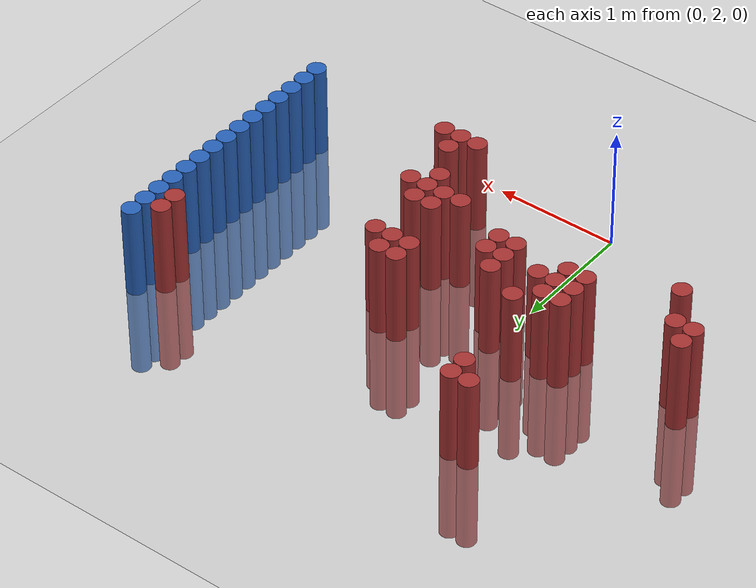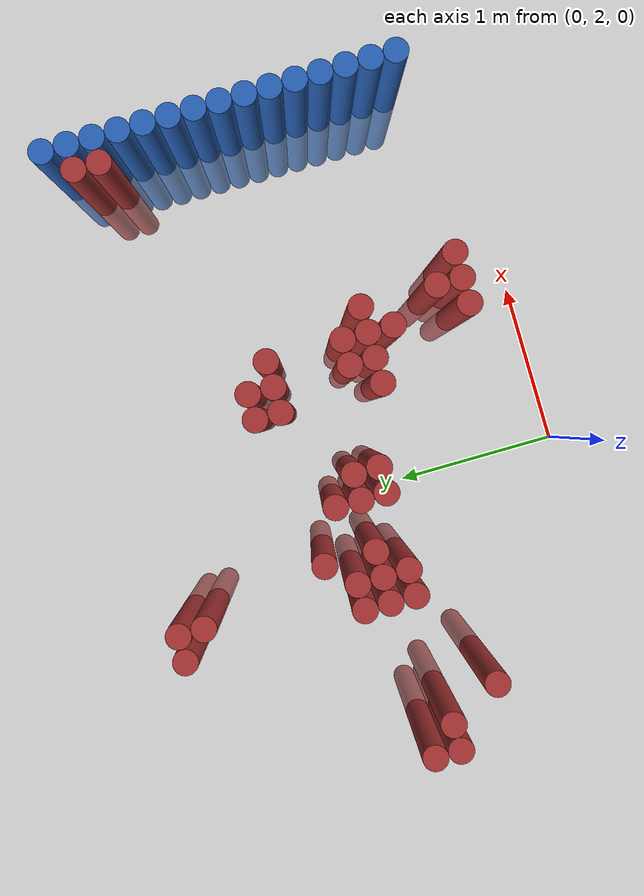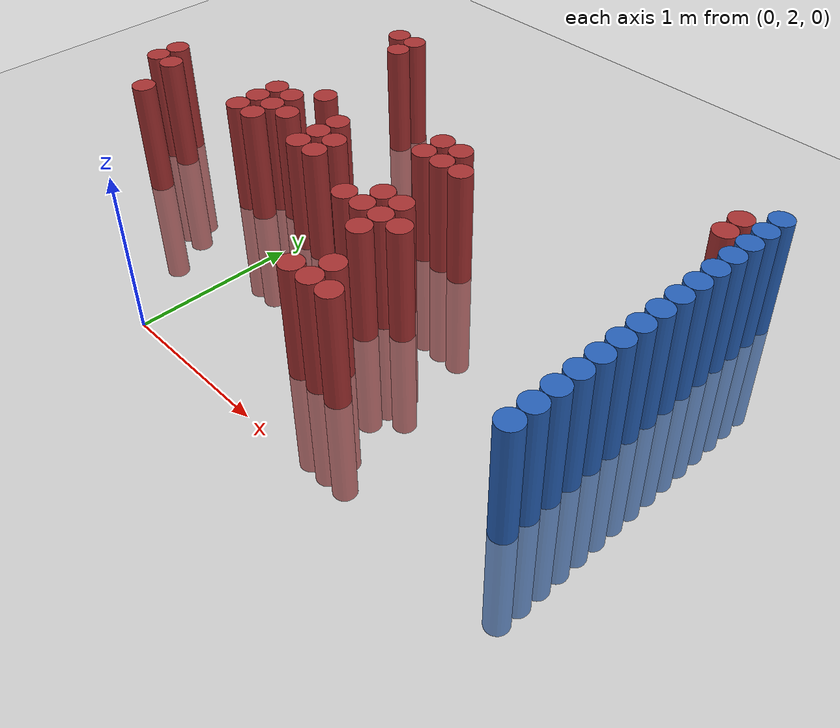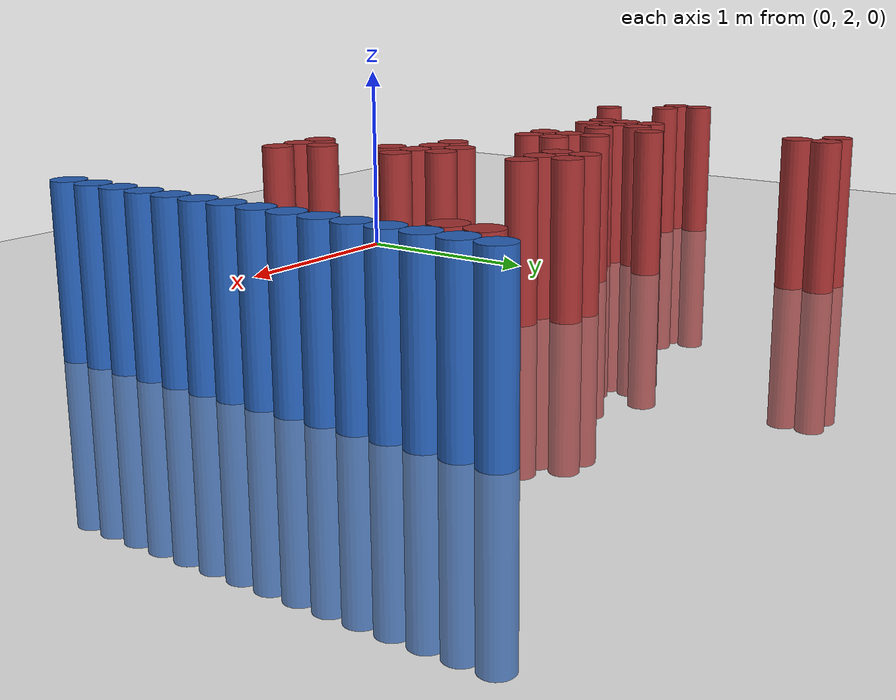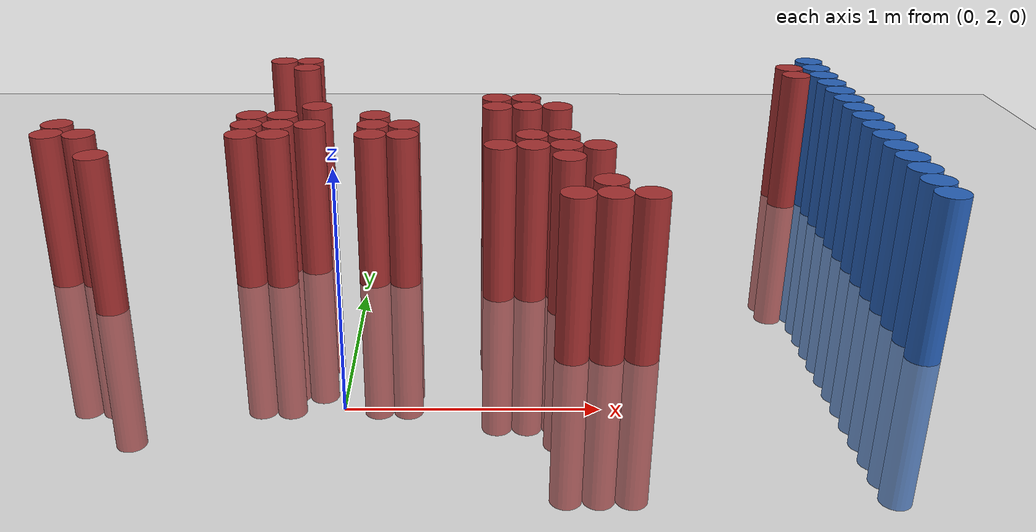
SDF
<sdf version="1.6">
 <world name="default">
  <model name="ground_plane">
   <static>1</static>
   <link name="link">
    <collision name="collision">
     <geometry><plane><normal>0 0 1</normal><size>100 100</size></plane></geometry>
     <surface><friction><ode><mu>100</mu><mu2>50</mu2></ode></friction></surface>
    </collision>
    <visual name="visual">
     <cast_shadows>0</cast_shadows>
     <geometry><plane><normal>0 0 1</normal><size>100 100</size></plane></geometry>
     <material>
      <script><uri>file://media/materials/scripts/gazebo.material</uri><name>Gazebo/Grey</name></script>
     </material>
    </visual>
   </link>
  </model>
  <model name="unit_cylinder_154">
   <static>1</static>
   <pose>-1.475000 3.175000 0.000000 0.000000 0.000000 0.000000</pose>
   <link name="link">
    <inertial>
     <mass>1</mass>
     <inertia><ixx>0.145833</ixx><ixy>0</ixy><ixz>0</ixz><iyy>0.145833</iyy><iyz>0</iyz><izz>0.125</izz></inertia>
    </inertial>
    <collision name="collision">
     <geometry><cylinder><radius>0.075000</radius><length>1.5</length></cylinder></geometry>
    </collision>
    <visual name="visual">
     <geometry><cylinder><radius>0.075000</radius><length>1.5</length></cylinder></geometry>
     <material>
      <ambient>0.648000 0.192000 0.192000 1</ambient>
      <diffuse>0.648000 0.192000 0.192000 1</diffuse>
     </material>
     <material>
      <script><name>Gazebo/Grey</name><uri>file://media/materials/scripts/gazebo.material</uri></script>
     </material>
    </visual>
   </link>
  </model>
  <model name="unit_cylinder_155">
   <static>1</static>
   <pose>-1.475000 3.325000 0.000000 0.000000 0.000000 0.000000</pose>
   <link name="link">
    <inertial>
     <mass>1</mass>
     <inertia><ixx>0.145833</ixx><ixy>0</ixy><ixz>0</ixz><iyy>0.145833</iyy><iyz>0</iyz><izz>0.125</izz></inertia>
    </inertial>
    <collision name="collision">
     <geometry><cylinder><radius>0.075000</radius><length>1.5</length></cylinder></geometry>
    </collision>
    <visual name="visual">
     <geometry><cylinder><radius>0.075000</radius><length>1.5</length></cylinder></geometry>
     <material>
      <ambient>0.648000 0.192000 0.192000 1</ambient>
      <diffuse>0.648000 0.192000 0.192000 1</diffuse>
     </material>
     <material>
      <script><name>Gazebo/Grey</name><uri>file://media/materials/scripts/gazebo.material</uri></script>
     </material>
    </visual>
   </link>
  </model>
  <model name="unit_cylinder_159">
   <static>1</static>
   <pose>-1.325000 3.175000 0.000000 0.000000 0.000000 0.000000</pose>
   <link name="link">
    <inertial>
     <mass>1</mass>
     <inertia><ixx>0.145833</ixx><ixy>0</ixy><ixz>0</ixz><iyy>0.145833</iyy><iyz>0</iyz><izz>0.125</izz></inertia>
    </inertial>
    <collision name="collision">
     <geometry><cylinder><radius>0.075000</radius><length>1.5</length></cylinder></geometry>
    </collision>
    <visual name="visual">
     <geometry><cylinder><radius>0.075000</radius><length>1.5</length></cylinder></geometry>
     <material>
      <ambient>0.648000 0.192000 0.192000 1</ambient>
      <diffuse>0.648000 0.192000 0.192000 1</diffuse>
     </material>
     <material>
      <script><name>Gazebo/Grey</name><uri>file://media/materials/scripts/gazebo.material</uri></script>
     </material>
    </visual>
   </link>
  </model>
  <model name="unit_cylinder_162">
   <static>1</static>
   <pose>-1.175000 2.875000 0.000000 0.000000 0.000000 0.000000</pose>
   <link name="link">
    <inertial>
     <mass>1</mass>
     <inertia><ixx>0.145833</ixx><ixy>0</ixy><ixz>0</ixz><iyy>0.145833</iyy><iyz>0</iyz><izz>0.125</izz></inertia>
    </inertial>
    <collision name="collision">
     <geometry><cylinder><radius>0.075000</radius><length>1.5</length></cylinder></geometry>
    </collision>
    <visual name="visual">
     <geometry><cylinder><radius>0.075000</radius><length>1.5</length></cylinder></geometry>
     <material>
      <ambient>0.648000 0.192000 0.192000 1</ambient>
      <diffuse>0.648000 0.192000 0.192000 1</diffuse>
     </material>
     <material>
      <script><name>Gazebo/Grey</name><uri>file://media/materials/scripts/gazebo.material</uri></script>
     </material>
    </visual>
   </link>
  </model>
  <model name="unit_cylinder_177">
   <static>1</static>
   <pose>-0.575000 3.175000 0.000000 0.000000 0.000000 0.000000</pose>
   <link name="link">
    <inertial>
     <mass>1</mass>
     <inertia><ixx>0.145833</ixx><ixy>0</ixy><ixz>0</ixz><iyy>0.145833</iyy><iyz>0</iyz><izz>0.125</izz></inertia>
    </inertial>
    <collision name="collision">
     <geometry><cylinder><radius>0.075000</radius><length>1.5</length></cylinder></geometry>
    </collision>
    <visual name="visual">
     <geometry><cylinder><radius>0.075000</radius><length>1.5</length></cylinder></geometry>
     <material>
      <ambient>0.648000 0.192000 0.192000 1</ambient>
      <diffuse>0.648000 0.192000 0.192000 1</diffuse>
     </material>
     <material>
      <script><name>Gazebo/Grey</name><uri>file://media/materials/scripts/gazebo.material</uri></script>
     </material>
    </visual>
   </link>
  </model>
  <model name="unit_cylinder_178">
   <static>1</static>
   <pose>-0.575000 3.325000 0.000000 0.000000 0.000000 0.000000</pose>
   <link name="link">
    <inertial>
     <mass>1</mass>
     <inertia><ixx>0.145833</ixx><ixy>0</ixy><ixz>0</ixz><iyy>0.145833</iyy><iyz>0</iyz><izz>0.125</izz></inertia>
    </inertial>
    <collision name="collision">
     <geometry><cylinder><radius>0.075000</radius><length>1.5</length></cylinder></geometry>
    </collision>
    <visual name="visual">
     <geometry><cylinder><radius>0.075000</radius><length>1.5</length></cylinder></geometry>
     <material>
      <ambient>0.648000 0.192000 0.192000 1</ambient>
      <diffuse>0.648000 0.192000 0.192000 1</diffuse>
     </material>
     <material>
      <script><name>Gazebo/Grey</name><uri>file://media/materials/scripts/gazebo.material</uri></script>
     </material>
    </visual>
   </link>
  </model>
  <model name="unit_cylinder_179">
   <static>1</static>
   <pose>-0.575000 3.475000 0.000000 0.000000 0.000000 0.000000</pose>
   <link name="link">
    <inertial>
     <mass>1</mass>
     <inertia><ixx>0.145833</ixx><ixy>0</ixy><ixz>0</ixz><iyy>0.145833</iyy><iyz>0</iyz><izz>0.125</izz></inertia>
    </inertial>
    <collision name="collision">
     <geometry><cylinder><radius>0.075000</radius><length>1.5</length></cylinder></geometry>
    </collision>
    <visual name="visual">
     <geometry><cylinder><radius>0.075000</radius><length>1.5</length></cylinder></geometry>
     <material>
      <ambient>0.648000 0.192000 0.192000 1</ambient>
      <diffuse>0.648000 0.192000 0.192000 1</diffuse>
     </material>
     <material>
      <script><name>Gazebo/Grey</name><uri>file://media/materials/scripts/gazebo.material</uri></script>
     </material>
    </visual>
   </link>
  </model>
  <model name="unit_cylinder_180">
   <static>1</static>
   <pose>-0.575000 4.525000 0.000000 0.000000 0.000000 0.000000</pose>
   <link name="link">
    <inertial>
     <mass>1</mass>
     <inertia><ixx>0.145833</ixx><ixy>0</ixy><ixz>0</ixz><iyy>0.145833</iyy><iyz>0</iyz><izz>0.125</izz></inertia>
    </inertial>
    <collision name="collision">
     <geometry><cylinder><radius>0.075000</radius><length>1.5</length></cylinder></geometry>
    </collision>
    <visual name="visual">
     <geometry><cylinder><radius>0.075000</radius><length>1.5</length></cylinder></geometry>
     <material>
      <ambient>0.648000 0.192000 0.192000 1</ambient>
      <diffuse>0.648000 0.192000 0.192000 1</diffuse>
     </material>
     <material>
      <script><name>Gazebo/Grey</name><uri>file://media/materials/scripts/gazebo.material</uri></script>
     </material>
    </visual>
   </link>
  </model>
  <model name="unit_cylinder_185">
   <static>1</static>
   <pose>-0.425000 3.175000 0.000000 0.000000 0.000000 0.000000</pose>
   <link name="link">
    <inertial>
     <mass>1</mass>
     <inertia><ixx>0.145833</ixx><ixy>0</ixy><ixz>0</ixz><iyy>0.145833</iyy><iyz>0</iyz><izz>0.125</izz></inertia>
    </inertial>
    <collision name="collision">
     <geometry><cylinder><radius>0.075000</radius><length>1.5</length></cylinder></geometry>
    </collision>
    <visual name="visual">
     <geometry><cylinder><radius>0.075000</radius><length>1.5</length></cylinder></geometry>
     <material>
      <ambient>0.648000 0.192000 0.192000 1</ambient>
      <diffuse>0.648000 0.192000 0.192000 1</diffuse>
     </material>
     <material>
      <script><name>Gazebo/Grey</name><uri>file://media/materials/scripts/gazebo.material</uri></script>
     </material>
    </visual>
   </link>
  </model>
  <model name="unit_cylinder_186">
   <static>1</static>
   <pose>-0.425000 3.325000 0.000000 0.000000 0.000000 0.000000</pose>
   <link name="link">
    <inertial>
     <mass>1</mass>
     <inertia><ixx>0.145833</ixx><ixy>0</ixy><ixz>0</ixz><iyy>0.145833</iyy><iyz>0</iyz><izz>0.125</izz></inertia>
    </inertial>
    <collision name="collision">
     <geometry><cylinder><radius>0.075000</radius><length>1.5</length></cylinder></geometry>
    </collision>
    <visual name="visual">
     <geometry><cylinder><radius>0.075000</radius><length>1.5</length></cylinder></geometry>
     <material>
      <ambient>0.648000 0.192000 0.192000 1</ambient>
      <diffuse>0.648000 0.192000 0.192000 1</diffuse>
     </material>
     <material>
      <script><name>Gazebo/Grey</name><uri>file://media/materials/scripts/gazebo.material</uri></script>
     </material>
    </visual>
   </link>
  </model>
  <model name="unit_cylinder_187">
   <static>1</static>
   <pose>-0.425000 3.475000 0.000000 0.000000 0.000000 0.000000</pose>
   <link name="link">
    <inertial>
     <mass>1</mass>
     <inertia><ixx>0.145833</ixx><ixy>0</ixy><ixz>0</ixz><iyy>0.145833</iyy><iyz>0</iyz><izz>0.125</izz></inertia>
    </inertial>
    <collision name="collision">
     <geometry><cylinder><radius>0.075000</radius><length>1.5</length></cylinder></geometry>
    </collision>
    <visual name="visual">
     <geometry><cylinder><radius>0.075000</radius><length>1.5</length></cylinder></geometry>
     <material>
      <ambient>0.648000 0.192000 0.192000 1</ambient>
      <diffuse>0.648000 0.192000 0.192000 1</diffuse>
     </material>
     <material>
      <script><name>Gazebo/Grey</name><uri>file://media/materials/scripts/gazebo.material</uri></script>
     </material>
    </visual>
   </link>
  </model>
  <model name="unit_cylinder_188">
   <static>1</static>
   <pose>-0.425000 4.375000 0.000000 0.000000 0.000000 0.000000</pose>
   <link name="link">
    <inertial>
     <mass>1</mass>
     <inertia><ixx>0.145833</ixx><ixy>0</ixy><ixz>0</ixz><iyy>0.145833</iyy><iyz>0</iyz><izz>0.125</izz></inertia>
    </inertial>
    <collision name="collision">
     <geometry><cylinder><radius>0.075000</radius><length>1.5</length></cylinder></geometry>
    </collision>
    <visual name="visual">
     <geometry><cylinder><radius>0.075000</radius><length>1.5</length></cylinder></geometry>
     <material>
      <ambient>0.648000 0.192000 0.192000 1</ambient>
      <diffuse>0.648000 0.192000 0.192000 1</diffuse>
     </material>
     <material>
      <script><name>Gazebo/Grey</name><uri>file://media/materials/scripts/gazebo.material</uri></script>
     </material>
    </visual>
   </link>
  </model>
  <model name="unit_cylinder_189">
   <static>1</static>
   <pose>-0.425000 4.525000 0.000000 0.000000 0.000000 0.000000</pose>
   <link name="link">
    <inertial>
     <mass>1</mass>
     <inertia><ixx>0.145833</ixx><ixy>0</ixy><ixz>0</ixz><iyy>0.145833</iyy><iyz>0</iyz><izz>0.125</izz></inertia>
    </inertial>
    <collision name="collision">
     <geometry><cylinder><radius>0.075000</radius><length>1.5</length></cylinder></geometry>
    </collision>
    <visual name="visual">
     <geometry><cylinder><radius>0.075000</radius><length>1.5</length></cylinder></geometry>
     <material>
      <ambient>0.648000 0.192000 0.192000 1</ambient>
      <diffuse>0.648000 0.192000 0.192000 1</diffuse>
     </material>
     <material>
      <script><name>Gazebo/Grey</name><uri>file://media/materials/scripts/gazebo.material</uri></script>
     </material>
    </visual>
   </link>
  </model>
  <model name="unit_cylinder_190">
   <static>1</static>
   <pose>-0.275000 3.325000 0.000000 0.000000 0.000000 0.000000</pose>
   <link name="link">
    <inertial>
     <mass>1</mass>
     <inertia><ixx>0.145833</ixx><ixy>0</ixy><ixz>0</ixz><iyy>0.145833</iyy><iyz>0</iyz><izz>0.125</izz></inertia>
    </inertial>
    <collision name="collision">
     <geometry><cylinder><radius>0.075000</radius><length>1.5</length></cylinder></geometry>
    </collision>
    <visual name="visual">
     <geometry><cylinder><radius>0.075000</radius><length>1.5</length></cylinder></geometry>
     <material>
      <ambient>0.648000 0.192000 0.192000 1</ambient>
      <diffuse>0.648000 0.192000 0.192000 1</diffuse>
     </material>
     <material>
      <script><name>Gazebo/Grey</name><uri>file://media/materials/scripts/gazebo.material</uri></script>
     </material>
    </visual>
   </link>
  </model>
  <model name="unit_cylinder_191">
   <static>1</static>
   <pose>-0.275000 3.625000 0.000000 0.000000 0.000000 0.000000</pose>
   <link name="link">
    <inertial>
     <mass>1</mass>
     <inertia><ixx>0.145833</ixx><ixy>0</ixy><ixz>0</ixz><iyy>0.145833</iyy><iyz>0</iyz><izz>0.125</izz></inertia>
    </inertial>
    <collision name="collision">
     <geometry><cylinder><radius>0.075000</radius><length>1.5</length></cylinder></geometry>
    </collision>
    <visual name="visual">
     <geometry><cylinder><radius>0.075000</radius><length>1.5</length></cylinder></geometry>
     <material>
      <ambient>0.648000 0.192000 0.192000 1</ambient>
      <diffuse>0.648000 0.192000 0.192000 1</diffuse>
     </material>
     <material>
      <script><name>Gazebo/Grey</name><uri>file://media/materials/scripts/gazebo.material</uri></script>
     </material>
    </visual>
   </link>
  </model>
  <model name="unit_cylinder_192">
   <static>1</static>
   <pose>0.025000 3.175000 0.000000 0.000000 0.000000 0.000000</pose>
   <link name="link">
    <inertial>
     <mass>1</mass>
     <inertia><ixx>0.145833</ixx><ixy>0</ixy><ixz>0</ixz><iyy>0.145833</iyy><iyz>0</iyz><izz>0.125</izz></inertia>
    </inertial>
    <collision name="collision">
     <geometry><cylinder><radius>0.075000</radius><length>1.5</length></cylinder></geometry>
    </collision>
    <visual name="visual">
     <geometry><cylinder><radius>0.075000</radius><length>1.5</length></cylinder></geometry>
     <material>
      <ambient>0.648000 0.192000 0.192000 1</ambient>
      <diffuse>0.648000 0.192000 0.192000 1</diffuse>
     </material>
     <material>
      <script><name>Gazebo/Grey</name><uri>file://media/materials/scripts/gazebo.material</uri></script>
     </material>
    </visual>
   </link>
  </model>
  <model name="unit_cylinder_193">
   <static>1</static>
   <pose>0.025000 3.325000 0.000000 0.000000 0.000000 0.000000</pose>
   <link name="link">
    <inertial>
     <mass>1</mass>
     <inertia><ixx>0.145833</ixx><ixy>0</ixy><ixz>0</ixz><iyy>0.145833</iyy><iyz>0</iyz><izz>0.125</izz></inertia>
    </inertial>
    <collision name="collision">
     <geometry><cylinder><radius>0.075000</radius><length>1.5</length></cylinder></geometry>
    </collision>
    <visual name="visual">
     <geometry><cylinder><radius>0.075000</radius><length>1.5</length></cylinder></geometry>
     <material>
      <ambient>0.648000 0.192000 0.192000 1</ambient>
      <diffuse>0.648000 0.192000 0.192000 1</diffuse>
     </material>
     <material>
      <script><name>Gazebo/Grey</name><uri>file://media/materials/scripts/gazebo.material</uri></script>
     </material>
    </visual>
   </link>
  </model>
  <model name="unit_cylinder_194">
   <static>1</static>
   <pose>0.025000 3.475000 0.000000 0.000000 0.000000 0.000000</pose>
   <link name="link">
    <inertial>
     <mass>1</mass>
     <inertia><ixx>0.145833</ixx><ixy>0</ixy><ixz>0</ixz><iyy>0.145833</iyy><iyz>0</iyz><izz>0.125</izz></inertia>
    </inertial>
    <collision name="collision">
     <geometry><cylinder><radius>0.075000</radius><length>1.5</length></cylinder></geometry>
    </collision>
    <visual name="visual">
     <geometry><cylinder><radius>0.075000</radius><length>1.5</length></cylinder></geometry>
     <material>
      <ambient>0.648000 0.192000 0.192000 1</ambient>
      <diffuse>0.648000 0.192000 0.192000 1</diffuse>
     </material>
     <material>
      <script><name>Gazebo/Grey</name><uri>file://media/materials/scripts/gazebo.material</uri></script>
     </material>
    </visual>
   </link>
  </model>
  <model name="unit_cylinder_197">
   <static>1</static>
   <pose>0.175000 3.175000 0.000000 0.000000 0.000000 0.000000</pose>
   <link name="link">
    <inertial>
     <mass>1</mass>
     <inertia><ixx>0.145833</ixx><ixy>0</ixy><ixz>0</ixz><iyy>0.145833</iyy><iyz>0</iyz><izz>0.125</izz></inertia>
    </inertial>
    <collision name="collision">
     <geometry><cylinder><radius>0.075000</radius><length>1.5</length></cylinder></geometry>
    </collision>
    <visual name="visual">
     <geometry><cylinder><radius>0.075000</radius><length>1.5</length></cylinder></geometry>
     <material>
      <ambient>0.648000 0.192000 0.192000 1</ambient>
      <diffuse>0.648000 0.192000 0.192000 1</diffuse>
     </material>
     <material>
      <script><name>Gazebo/Grey</name><uri>file://media/materials/scripts/gazebo.material</uri></script>
     </material>
    </visual>
   </link>
  </model>
  <model name="unit_cylinder_198">
   <static>1</static>
   <pose>0.175000 3.325000 0.000000 0.000000 0.000000 0.000000</pose>
   <link name="link">
    <inertial>
     <mass>1</mass>
     <inertia><ixx>0.145833</ixx><ixy>0</ixy><ixz>0</ixz><iyy>0.145833</iyy><iyz>0</iyz><izz>0.125</izz></inertia>
    </inertial>
    <collision name="collision">
     <geometry><cylinder><radius>0.075000</radius><length>1.5</length></cylinder></geometry>
    </collision>
    <visual name="visual">
     <geometry><cylinder><radius>0.075000</radius><length>1.5</length></cylinder></geometry>
     <material>
      <ambient>0.648000 0.192000 0.192000 1</ambient>
      <diffuse>0.648000 0.192000 0.192000 1</diffuse>
     </material>
     <material>
      <script><name>Gazebo/Grey</name><uri>file://media/materials/scripts/gazebo.material</uri></script>
     </material>
    </visual>
   </link>
  </model>
  <model name="unit_cylinder_208">
   <static>1</static>
   <pose>0.625000 3.025000 0.000000 0.000000 0.000000 0.000000</pose>
   <link name="link">
    <inertial>
     <mass>1</mass>
     <inertia><ixx>0.145833</ixx><ixy>0</ixy><ixz>0</ixz><iyy>0.145833</iyy><iyz>0</iyz><izz>0.125</izz></inertia>
    </inertial>
    <collision name="collision">
     <geometry><cylinder><radius>0.075000</radius><length>1.5</length></cylinder></geometry>
    </collision>
    <visual name="visual">
     <geometry><cylinder><radius>0.075000</radius><length>1.5</length></cylinder></geometry>
     <material>
      <ambient>0.648000 0.192000 0.192000 1</ambient>
      <diffuse>0.648000 0.192000 0.192000 1</diffuse>
     </material>
     <material>
      <script><name>Gazebo/Grey</name><uri>file://media/materials/scripts/gazebo.material</uri></script>
     </material>
    </visual>
   </link>
  </model>
  <model name="unit_cylinder_209">
   <static>1</static>
   <pose>0.625000 3.625000 0.000000 0.000000 0.000000 0.000000</pose>
   <link name="link">
    <inertial>
     <mass>1</mass>
     <inertia><ixx>0.145833</ixx><ixy>0</ixy><ixz>0</ixz><iyy>0.145833</iyy><iyz>0</iyz><izz>0.125</izz></inertia>
    </inertial>
    <collision name="collision">
     <geometry><cylinder><radius>0.075000</radius><length>1.5</length></cylinder></geometry>
    </collision>
    <visual name="visual">
     <geometry><cylinder><radius>0.075000</radius><length>1.5</length></cylinder></geometry>
     <material>
      <ambient>0.648000 0.192000 0.192000 1</ambient>
      <diffuse>0.648000 0.192000 0.192000 1</diffuse>
     </material>
     <material>
      <script><name>Gazebo/Grey</name><uri>file://media/materials/scripts/gazebo.material</uri></script>
     </material>
    </visual>
   </link>
  </model>
  <model name="unit_cylinder_210">
   <static>1</static>
   <pose>0.625000 3.775000 0.000000 0.000000 0.000000 0.000000</pose>
   <link name="link">
    <inertial>
     <mass>1</mass>
     <inertia><ixx>0.145833</ixx><ixy>0</ixy><ixz>0</ixz><iyy>0.145833</iyy><iyz>0</iyz><izz>0.125</izz></inertia>
    </inertial>
    <collision name="collision">
     <geometry><cylinder><radius>0.075000</radius><length>1.5</length></cylinder></geometry>
    </collision>
    <visual name="visual">
     <geometry><cylinder><radius>0.075000</radius><length>1.5</length></cylinder></geometry>
     <material>
      <ambient>0.648000 0.192000 0.192000 1</ambient>
      <diffuse>0.648000 0.192000 0.192000 1</diffuse>
     </material>
     <material>
      <script><name>Gazebo/Grey</name><uri>file://media/materials/scripts/gazebo.material</uri></script>
     </material>
    </visual>
   </link>
  </model>
  <model name="unit_cylinder_213">
   <static>1</static>
   <pose>0.775000 3.025000 0.000000 0.000000 0.000000 0.000000</pose>
   <link name="link">
    <inertial>
     <mass>1</mass>
     <inertia><ixx>0.145833</ixx><ixy>0</ixy><ixz>0</ixz><iyy>0.145833</iyy><iyz>0</iyz><izz>0.125</izz></inertia>
    </inertial>
    <collision name="collision">
     <geometry><cylinder><radius>0.075000</radius><length>1.5</length></cylinder></geometry>
    </collision>
    <visual name="visual">
     <geometry><cylinder><radius>0.075000</radius><length>1.5</length></cylinder></geometry>
     <material>
      <ambient>0.648000 0.192000 0.192000 1</ambient>
      <diffuse>0.648000 0.192000 0.192000 1</diffuse>
     </material>
     <material>
      <script><name>Gazebo/Grey</name><uri>file://media/materials/scripts/gazebo.material</uri></script>
     </material>
    </visual>
   </link>
  </model>
  <model name="unit_cylinder_214">
   <static>1</static>
   <pose>0.775000 3.175000 0.000000 0.000000 0.000000 0.000000</pose>
   <link name="link">
    <inertial>
     <mass>1</mass>
     <inertia><ixx>0.145833</ixx><ixy>0</ixy><ixz>0</ixz><iyy>0.145833</iyy><iyz>0</iyz><izz>0.125</izz></inertia>
    </inertial>
    <collision name="collision">
     <geometry><cylinder><radius>0.075000</radius><length>1.5</length></cylinder></geometry>
    </collision>
    <visual name="visual">
     <geometry><cylinder><radius>0.075000</radius><length>1.5</length></cylinder></geometry>
     <material>
      <ambient>0.648000 0.192000 0.192000 1</ambient>
      <diffuse>0.648000 0.192000 0.192000 1</diffuse>
     </material>
     <material>
      <script><name>Gazebo/Grey</name><uri>file://media/materials/scripts/gazebo.material</uri></script>
     </material>
    </visual>
   </link>
  </model>
  <model name="unit_cylinder_215">
   <static>1</static>
   <pose>0.775000 3.625000 0.000000 0.000000 0.000000 0.000000</pose>
   <link name="link">
    <inertial>
     <mass>1</mass>
     <inertia><ixx>0.145833</ixx><ixy>0</ixy><ixz>0</ixz><iyy>0.145833</iyy><iyz>0</iyz><izz>0.125</izz></inertia>
    </inertial>
    <collision name="collision">
     <geometry><cylinder><radius>0.075000</radius><length>1.5</length></cylinder></geometry>
    </collision>
    <visual name="visual">
     <geometry><cylinder><radius>0.075000</radius><length>1.5</length></cylinder></geometry>
     <material>
      <ambient>0.648000 0.192000 0.192000 1</ambient>
      <diffuse>0.648000 0.192000 0.192000 1</diffuse>
     </material>
     <material>
      <script><name>Gazebo/Grey</name><uri>file://media/materials/scripts/gazebo.material</uri></script>
     </material>
    </visual>
   </link>
  </model>
  <model name="unit_cylinder_216">
   <static>1</static>
   <pose>0.775000 3.775000 0.000000 0.000000 0.000000 0.000000</pose>
   <link name="link">
    <inertial>
     <mass>1</mass>
     <inertia><ixx>0.145833</ixx><ixy>0</ixy><ixz>0</ixz><iyy>0.145833</iyy><iyz>0</iyz><izz>0.125</izz></inertia>
    </inertial>
    <collision name="collision">
     <geometry><cylinder><radius>0.075000</radius><length>1.5</length></cylinder></geometry>
    </collision>
    <visual name="visual">
     <geometry><cylinder><radius>0.075000</radius><length>1.5</length></cylinder></geometry>
     <material>
      <ambient>0.648000 0.192000 0.192000 1</ambient>
      <diffuse>0.648000 0.192000 0.192000 1</diffuse>
     </material>
     <material>
      <script><name>Gazebo/Grey</name><uri>file://media/materials/scripts/gazebo.material</uri></script>
     </material>
    </visual>
   </link>
  </model>
  <model name="unit_cylinder_220">
   <static>1</static>
   <pose>0.925000 2.425000 0.000000 0.000000 0.000000 0.000000</pose>
   <link name="link">
    <inertial>
     <mass>1</mass>
     <inertia><ixx>0.145833</ixx><ixy>0</ixy><ixz>0</ixz><iyy>0.145833</iyy><iyz>0</iyz><izz>0.125</izz></inertia>
    </inertial>
    <collision name="collision">
     <geometry><cylinder><radius>0.075000</radius><length>1.5</length></cylinder></geometry>
    </collision>
    <visual name="visual">
     <geometry><cylinder><radius>0.075000</radius><length>1.5</length></cylinder></geometry>
     <material>
      <ambient>0.648000 0.192000 0.192000 1</ambient>
      <diffuse>0.648000 0.192000 0.192000 1</diffuse>
     </material>
     <material>
      <script><name>Gazebo/Grey</name><uri>file://media/materials/scripts/gazebo.material</uri></script>
     </material>
    </visual>
   </link>
  </model>
  <model name="unit_cylinder_221">
   <static>1</static>
   <pose>0.925000 2.875000 0.000000 0.000000 0.000000 0.000000</pose>
   <link name="link">
    <inertial>
     <mass>1</mass>
     <inertia><ixx>0.145833</ixx><ixy>0</ixy><ixz>0</ixz><iyy>0.145833</iyy><iyz>0</iyz><izz>0.125</izz></inertia>
    </inertial>
    <collision name="collision">
     <geometry><cylinder><radius>0.075000</radius><length>1.5</length></cylinder></geometry>
    </collision>
    <visual name="visual">
     <geometry><cylinder><radius>0.075000</radius><length>1.5</length></cylinder></geometry>
     <material>
      <ambient>0.648000 0.192000 0.192000 1</ambient>
      <diffuse>0.648000 0.192000 0.192000 1</diffuse>
     </material>
     <material>
      <script><name>Gazebo/Grey</name><uri>file://media/materials/scripts/gazebo.material</uri></script>
     </material>
    </visual>
   </link>
  </model>
  <model name="unit_cylinder_222">
   <static>1</static>
   <pose>0.925000 3.025000 0.000000 0.000000 0.000000 0.000000</pose>
   <link name="link">
    <inertial>
     <mass>1</mass>
     <inertia><ixx>0.145833</ixx><ixy>0</ixy><ixz>0</ixz><iyy>0.145833</iyy><iyz>0</iyz><izz>0.125</izz></inertia>
    </inertial>
    <collision name="collision">
     <geometry><cylinder><radius>0.075000</radius><length>1.5</length></cylinder></geometry>
    </collision>
    <visual name="visual">
     <geometry><cylinder><radius>0.075000</radius><length>1.5</length></cylinder></geometry>
     <material>
      <ambient>0.648000 0.192000 0.192000 1</ambient>
      <diffuse>0.648000 0.192000 0.192000 1</diffuse>
     </material>
     <material>
      <script><name>Gazebo/Grey</name><uri>file://media/materials/scripts/gazebo.material</uri></script>
     </material>
    </visual>
   </link>
  </model>
  <model name="unit_cylinder_223">
   <static>1</static>
   <pose>0.925000 3.175000 0.000000 0.000000 0.000000 0.000000</pose>
   <link name="link">
    <inertial>
     <mass>1</mass>
     <inertia><ixx>0.145833</ixx><ixy>0</ixy><ixz>0</ixz><iyy>0.145833</iyy><iyz>0</iyz><izz>0.125</izz></inertia>
    </inertial>
    <collision name="collision">
     <geometry><cylinder><radius>0.075000</radius><length>1.5</length></cylinder></geometry>
    </collision>
    <visual name="visual">
     <geometry><cylinder><radius>0.075000</radius><length>1.5</length></cylinder></geometry>
     <material>
      <ambient>0.648000 0.192000 0.192000 1</ambient>
      <diffuse>0.648000 0.192000 0.192000 1</diffuse>
     </material>
     <material>
      <script><name>Gazebo/Grey</name><uri>file://media/materials/scripts/gazebo.material</uri></script>
     </material>
    </visual>
   </link>
  </model>
  <model name="unit_cylinder_224">
   <static>1</static>
   <pose>0.925000 3.625000 0.000000 0.000000 0.000000 0.000000</pose>
   <link name="link">
    <inertial>
     <mass>1</mass>
     <inertia><ixx>0.145833</ixx><ixy>0</ixy><ixz>0</ixz><iyy>0.145833</iyy><iyz>0</iyz><izz>0.125</izz></inertia>
    </inertial>
    <collision name="collision">
     <geometry><cylinder><radius>0.075000</radius><length>1.5</length></cylinder></geometry>
    </collision>
    <visual name="visual">
     <geometry><cylinder><radius>0.075000</radius><length>1.5</length></cylinder></geometry>
     <material>
      <ambient>0.648000 0.192000 0.192000 1</ambient>
      <diffuse>0.648000 0.192000 0.192000 1</diffuse>
     </material>
     <material>
      <script><name>Gazebo/Grey</name><uri>file://media/materials/scripts/gazebo.material</uri></script>
     </material>
    </visual>
   </link>
  </model>
  <model name="unit_cylinder_226">
   <static>1</static>
   <pose>1.075000 2.425000 0.000000 0.000000 0.000000 0.000000</pose>
   <link name="link">
    <inertial>
     <mass>1</mass>
     <inertia><ixx>0.145833</ixx><ixy>0</ixy><ixz>0</ixz><iyy>0.145833</iyy><iyz>0</iyz><izz>0.125</izz></inertia>
    </inertial>
    <collision name="collision">
     <geometry><cylinder><radius>0.075000</radius><length>1.5</length></cylinder></geometry>
    </collision>
    <visual name="visual">
     <geometry><cylinder><radius>0.075000</radius><length>1.5</length></cylinder></geometry>
     <material>
      <ambient>0.648000 0.192000 0.192000 1</ambient>
      <diffuse>0.648000 0.192000 0.192000 1</diffuse>
     </material>
     <material>
      <script><name>Gazebo/Grey</name><uri>file://media/materials/scripts/gazebo.material</uri></script>
     </material>
    </visual>
   </link>
  </model>
  <model name="unit_cylinder_227">
   <static>1</static>
   <pose>1.075000 2.575000 0.000000 0.000000 0.000000 0.000000</pose>
   <link name="link">
    <inertial>
     <mass>1</mass>
     <inertia><ixx>0.145833</ixx><ixy>0</ixy><ixz>0</ixz><iyy>0.145833</iyy><iyz>0</iyz><izz>0.125</izz></inertia>
    </inertial>
    <collision name="collision">
     <geometry><cylinder><radius>0.075000</radius><length>1.5</length></cylinder></geometry>
    </collision>
    <visual name="visual">
     <geometry><cylinder><radius>0.075000</radius><length>1.5</length></cylinder></geometry>
     <material>
      <ambient>0.648000 0.192000 0.192000 1</ambient>
      <diffuse>0.648000 0.192000 0.192000 1</diffuse>
     </material>
     <material>
      <script><name>Gazebo/Grey</name><uri>file://media/materials/scripts/gazebo.material</uri></script>
     </material>
    </visual>
   </link>
  </model>
  <model name="unit_cylinder_228">
   <static>1</static>
   <pose>1.075000 3.025000 0.000000 0.000000 0.000000 0.000000</pose>
   <link name="link">
    <inertial>
     <mass>1</mass>
     <inertia><ixx>0.145833</ixx><ixy>0</ixy><ixz>0</ixz><iyy>0.145833</iyy><iyz>0</iyz><izz>0.125</izz></inertia>
    </inertial>
    <collision name="collision">
     <geometry><cylinder><radius>0.075000</radius><length>1.5</length></cylinder></geometry>
    </collision>
    <visual name="visual">
     <geometry><cylinder><radius>0.075000</radius><length>1.5</length></cylinder></geometry>
     <material>
      <ambient>0.648000 0.192000 0.192000 1</ambient>
      <diffuse>0.648000 0.192000 0.192000 1</diffuse>
     </material>
     <material>
      <script><name>Gazebo/Grey</name><uri>file://media/materials/scripts/gazebo.material</uri></script>
     </material>
    </visual>
   </link>
  </model>
  <model name="unit_cylinder_229">
   <static>1</static>
   <pose>1.225000 2.425000 0.000000 0.000000 0.000000 0.000000</pose>
   <link name="link">
    <inertial>
     <mass>1</mass>
     <inertia><ixx>0.145833</ixx><ixy>0</ixy><ixz>0</ixz><iyy>0.145833</iyy><iyz>0</iyz><izz>0.125</izz></inertia>
    </inertial>
    <collision name="collision">
     <geometry><cylinder><radius>0.075000</radius><length>1.5</length></cylinder></geometry>
    </collision>
    <visual name="visual">
     <geometry><cylinder><radius>0.075000</radius><length>1.5</length></cylinder></geometry>
     <material>
      <ambient>0.648000 0.192000 0.192000 1</ambient>
      <diffuse>0.648000 0.192000 0.192000 1</diffuse>
     </material>
     <material>
      <script><name>Gazebo/Grey</name><uri>file://media/materials/scripts/gazebo.material</uri></script>
     </material>
    </visual>
   </link>
  </model>
  <model name="unit_cylinder_230">
   <static>1</static>
   <pose>2.275000 4.225000 0.000000 0.000000 0.000000 0.000000</pose>
   <link name="link">
    <inertial>
     <mass>1</mass>
     <inertia><ixx>0.145833</ixx><ixy>0</ixy><ixz>0</ixz><iyy>0.145833</iyy><iyz>0</iyz><izz>0.125</izz></inertia>
    </inertial>
    <collision name="collision">
     <geometry><cylinder><radius>0.075000</radius><length>1.5</length></cylinder></geometry>
    </collision>
    <visual name="visual">
     <geometry><cylinder><radius>0.075000</radius><length>1.5</length></cylinder></geometry>
     <material>
      <ambient>0.648000 0.192000 0.192000 1</ambient>
      <diffuse>0.648000 0.192000 0.192000 1</diffuse>
     </material>
     <material>
      <script><name>Gazebo/Grey</name><uri>file://media/materials/scripts/gazebo.material</uri></script>
     </material>
    </visual>
   </link>
  </model>
  <model name="unit_cylinder_231">
   <static>1</static>
   <pose>2.275000 4.375000 0.000000 0.000000 0.000000 0.000000</pose>
   <link name="link">
    <inertial>
     <mass>1</mass>
     <inertia><ixx>0.145833</ixx><ixy>0</ixy><ixz>0</ixz><iyy>0.145833</iyy><iyz>0</iyz><izz>0.125</izz></inertia>
    </inertial>
    <collision name="collision">
     <geometry><cylinder><radius>0.075000</radius><length>1.5</length></cylinder></geometry>
    </collision>
    <visual name="visual">
     <geometry><cylinder><radius>0.075000</radius><length>1.5</length></cylinder></geometry>
     <material>
      <ambient>0.648000 0.192000 0.192000 1</ambient>
      <diffuse>0.648000 0.192000 0.192000 1</diffuse>
     </material>
     <material>
      <script><name>Gazebo/Grey</name><uri>file://media/materials/scripts/gazebo.material</uri></script>
     </material>
    </visual>
   </link>
  </model>
  <model name="unit_cylinder_247">
   <static>1</static>
   <pose>2.425000 2.425000 0.000000 0.000000 0.000000 0.000000</pose>
   <link name="link">
    <inertial>
     <mass>1</mass>
     <inertia><ixx>0.145833</ixx><ixy>0</ixy><ixz>0</ixz><iyy>0.145833</iyy><iyz>0</iyz><izz>0.125</izz></inertia>
    </inertial>
    <collision name="collision">
     <geometry><cylinder><radius>0.075000</radius><length>1.5</length></cylinder></geometry>
    </collision>
    <visual name="visual">
     <geometry><cylinder><radius>0.075000</radius><length>1.5</length></cylinder></geometry>
     <material>
      <ambient>0.152000 0.379000 0.720000 1</ambient>
      <diffuse>0.152000 0.379000 0.720000 1</diffuse>
     </material>
     <material>
      <script><name>Gazebo/Grey</name><uri>file://media/materials/scripts/gazebo.material</uri></script>
     </material>
    </visual>
   </link>
  </model>
  <model name="unit_cylinder_248">
   <static>1</static>
   <pose>2.425000 2.575000 0.000000 0.000000 0.000000 0.000000</pose>
   <link name="link">
    <inertial>
     <mass>1</mass>
     <inertia><ixx>0.145833</ixx><ixy>0</ixy><ixz>0</ixz><iyy>0.145833</iyy><iyz>0</iyz><izz>0.125</izz></inertia>
    </inertial>
    <collision name="collision">
     <geometry><cylinder><radius>0.075000</radius><length>1.5</length></cylinder></geometry>
    </collision>
    <visual name="visual">
     <geometry><cylinder><radius>0.075000</radius><length>1.5</length></cylinder></geometry>
     <material>
      <ambient>0.152000 0.379000 0.720000 1</ambient>
      <diffuse>0.152000 0.379000 0.720000 1</diffuse>
     </material>
     <material>
      <script><name>Gazebo/Grey</name><uri>file://media/materials/scripts/gazebo.material</uri></script>
     </material>
    </visual>
   </link>
  </model>
  <model name="unit_cylinder_249">
   <static>1</static>
   <pose>2.425000 2.725000 0.000000 0.000000 0.000000 0.000000</pose>
   <link name="link">
    <inertial>
     <mass>1</mass>
     <inertia><ixx>0.145833</ixx><ixy>0</ixy><ixz>0</ixz><iyy>0.145833</iyy><iyz>0</iyz><izz>0.125</izz></inertia>
    </inertial>
    <collision name="collision">
     <geometry><cylinder><radius>0.075000</radius><length>1.5</length></cylinder></geometry>
    </collision>
    <visual name="visual">
     <geometry><cylinder><radius>0.075000</radius><length>1.5</length></cylinder></geometry>
     <material>
      <ambient>0.152000 0.379000 0.720000 1</ambient>
      <diffuse>0.152000 0.379000 0.720000 1</diffuse>
     </material>
     <material>
      <script><name>Gazebo/Grey</name><uri>file://media/materials/scripts/gazebo.material</uri></script>
     </material>
    </visual>
   </link>
  </model>
  <model name="unit_cylinder_250">
   <static>1</static>
   <pose>2.425000 2.875000 0.000000 0.000000 0.000000 0.000000</pose>
   <link name="link">
    <inertial>
     <mass>1</mass>
     <inertia><ixx>0.145833</ixx><ixy>0</ixy><ixz>0</ixz><iyy>0.145833</iyy><iyz>0</iyz><izz>0.125</izz></inertia>
    </inertial>
    <collision name="collision">
     <geometry><cylinder><radius>0.075000</radius><length>1.5</length></cylinder></geometry>
    </collision>
    <visual name="visual">
     <geometry><cylinder><radius>0.075000</radius><length>1.5</length></cylinder></geometry>
     <material>
      <ambient>0.152000 0.379000 0.720000 1</ambient>
      <diffuse>0.152000 0.379000 0.720000 1</diffuse>
     </material>
     <material>
      <script><name>Gazebo/Grey</name><uri>file://media/materials/scripts/gazebo.material</uri></script>
     </material>
    </visual>
   </link>
  </model>
  <model name="unit_cylinder_251">
   <static>1</static>
   <pose>2.425000 3.025000 0.000000 0.000000 0.000000 0.000000</pose>
   <link name="link">
    <inertial>
     <mass>1</mass>
     <inertia><ixx>0.145833</ixx><ixy>0</ixy><ixz>0</ixz><iyy>0.145833</iyy><iyz>0</iyz><izz>0.125</izz></inertia>
    </inertial>
    <collision name="collision">
     <geometry><cylinder><radius>0.075000</radius><length>1.5</length></cylinder></geometry>
    </collision>
    <visual name="visual">
     <geometry><cylinder><radius>0.075000</radius><length>1.5</length></cylinder></geometry>
     <material>
      <ambient>0.152000 0.379000 0.720000 1</ambient>
      <diffuse>0.152000 0.379000 0.720000 1</diffuse>
     </material>
     <material>
      <script><name>Gazebo/Grey</name><uri>file://media/materials/scripts/gazebo.material</uri></script>
     </material>
    </visual>
   </link>
  </model>
  <model name="unit_cylinder_252">
   <static>1</static>
   <pose>2.425000 3.175000 0.000000 0.000000 0.000000 0.000000</pose>
   <link name="link">
    <inertial>
     <mass>1</mass>
     <inertia><ixx>0.145833</ixx><ixy>0</ixy><ixz>0</ixz><iyy>0.145833</iyy><iyz>0</iyz><izz>0.125</izz></inertia>
    </inertial>
    <collision name="collision">
     <geometry><cylinder><radius>0.075000</radius><length>1.5</length></cylinder></geometry>
    </collision>
    <visual name="visual">
     <geometry><cylinder><radius>0.075000</radius><length>1.5</length></cylinder></geometry>
     <material>
      <ambient>0.152000 0.379000 0.720000 1</ambient>
      <diffuse>0.152000 0.379000 0.720000 1</diffuse>
     </material>
     <material>
      <script><name>Gazebo/Grey</name><uri>file://media/materials/scripts/gazebo.material</uri></script>
     </material>
    </visual>
   </link>
  </model>
  <model name="unit_cylinder_253">
   <static>1</static>
   <pose>2.425000 3.325000 0.000000 0.000000 0.000000 0.000000</pose>
   <link name="link">
    <inertial>
     <mass>1</mass>
     <inertia><ixx>0.145833</ixx><ixy>0</ixy><ixz>0</ixz><iyy>0.145833</iyy><iyz>0</iyz><izz>0.125</izz></inertia>
    </inertial>
    <collision name="collision">
     <geometry><cylinder><radius>0.075000</radius><length>1.5</length></cylinder></geometry>
    </collision>
    <visual name="visual">
     <geometry><cylinder><radius>0.075000</radius><length>1.5</length></cylinder></geometry>
     <material>
      <ambient>0.152000 0.379000 0.720000 1</ambient>
      <diffuse>0.152000 0.379000 0.720000 1</diffuse>
     </material>
     <material>
      <script><name>Gazebo/Grey</name><uri>file://media/materials/scripts/gazebo.material</uri></script>
     </material>
    </visual>
   </link>
  </model>
  <model name="unit_cylinder_254">
   <static>1</static>
   <pose>2.425000 3.475000 0.000000 0.000000 0.000000 0.000000</pose>
   <link name="link">
    <inertial>
     <mass>1</mass>
     <inertia><ixx>0.145833</ixx><ixy>0</ixy><ixz>0</ixz><iyy>0.145833</iyy><iyz>0</iyz><izz>0.125</izz></inertia>
    </inertial>
    <collision name="collision">
     <geometry><cylinder><radius>0.075000</radius><length>1.5</length></cylinder></geometry>
    </collision>
    <visual name="visual">
     <geometry><cylinder><radius>0.075000</radius><length>1.5</length></cylinder></geometry>
     <material>
      <ambient>0.152000 0.379000 0.720000 1</ambient>
      <diffuse>0.152000 0.379000 0.720000 1</diffuse>
     </material>
     <material>
      <script><name>Gazebo/Grey</name><uri>file://media/materials/scripts/gazebo.material</uri></script>
     </material>
    </visual>
   </link>
  </model>
  <model name="unit_cylinder_255">
   <static>1</static>
   <pose>2.425000 3.625000 0.000000 0.000000 0.000000 0.000000</pose>
   <link name="link">
    <inertial>
     <mass>1</mass>
     <inertia><ixx>0.145833</ixx><ixy>0</ixy><ixz>0</ixz><iyy>0.145833</iyy><iyz>0</iyz><izz>0.125</izz></inertia>
    </inertial>
    <collision name="collision">
     <geometry><cylinder><radius>0.075000</radius><length>1.5</length></cylinder></geometry>
    </collision>
    <visual name="visual">
     <geometry><cylinder><radius>0.075000</radius><length>1.5</length></cylinder></geometry>
     <material>
      <ambient>0.152000 0.379000 0.720000 1</ambient>
      <diffuse>0.152000 0.379000 0.720000 1</diffuse>
     </material>
     <material>
      <script><name>Gazebo/Grey</name><uri>file://media/materials/scripts/gazebo.material</uri></script>
     </material>
    </visual>
   </link>
  </model>
  <model name="unit_cylinder_256">
   <static>1</static>
   <pose>2.425000 3.775000 0.000000 0.000000 0.000000 0.000000</pose>
   <link name="link">
    <inertial>
     <mass>1</mass>
     <inertia><ixx>0.145833</ixx><ixy>0</ixy><ixz>0</ixz><iyy>0.145833</iyy><iyz>0</iyz><izz>0.125</izz></inertia>
    </inertial>
    <collision name="collision">
     <geometry><cylinder><radius>0.075000</radius><length>1.5</length></cylinder></geometry>
    </collision>
    <visual name="visual">
     <geometry><cylinder><radius>0.075000</radius><length>1.5</length></cylinder></geometry>
     <material>
      <ambient>0.152000 0.379000 0.720000 1</ambient>
      <diffuse>0.152000 0.379000 0.720000 1</diffuse>
     </material>
     <material>
      <script><name>Gazebo/Grey</name><uri>file://media/materials/scripts/gazebo.material</uri></script>
     </material>
    </visual>
   </link>
  </model>
  <model name="unit_cylinder_257">
   <static>1</static>
   <pose>2.425000 3.925000 0.000000 0.000000 0.000000 0.000000</pose>
   <link name="link">
    <inertial>
     <mass>1</mass>
     <inertia><ixx>0.145833</ixx><ixy>0</ixy><ixz>0</ixz><iyy>0.145833</iyy><iyz>0</iyz><izz>0.125</izz></inertia>
    </inertial>
    <collision name="collision">
     <geometry><cylinder><radius>0.075000</radius><length>1.5</length></cylinder></geometry>
    </collision>
    <visual name="visual">
     <geometry><cylinder><radius>0.075000</radius><length>1.5</length></cylinder></geometry>
     <material>
      <ambient>0.152000 0.379000 0.720000 1</ambient>
      <diffuse>0.152000 0.379000 0.720000 1</diffuse>
     </material>
     <material>
      <script><name>Gazebo/Grey</name><uri>file://media/materials/scripts/gazebo.material</uri></script>
     </material>
    </visual>
   </link>
  </model>
  <model name="unit_cylinder_258">
   <static>1</static>
   <pose>2.425000 4.075000 0.000000 0.000000 0.000000 0.000000</pose>
   <link name="link">
    <inertial>
     <mass>1</mass>
     <inertia><ixx>0.145833</ixx><ixy>0</ixy><ixz>0</ixz><iyy>0.145833</iyy><iyz>0</iyz><izz>0.125</izz></inertia>
    </inertial>
    <collision name="collision">
     <geometry><cylinder><radius>0.075000</radius><length>1.5</length></cylinder></geometry>
    </collision>
    <visual name="visual">
     <geometry><cylinder><radius>0.075000</radius><length>1.5</length></cylinder></geometry>
     <material>
      <ambient>0.152000 0.379000 0.720000 1</ambient>
      <diffuse>0.152000 0.379000 0.720000 1</diffuse>
     </material>
     <material>
      <script><name>Gazebo/Grey</name><uri>file://media/materials/scripts/gazebo.material</uri></script>
     </material>
    </visual>
   </link>
  </model>
  <model name="unit_cylinder_259">
   <static>1</static>
   <pose>2.425000 4.225000 0.000000 0.000000 0.000000 0.000000</pose>
   <link name="link">
    <inertial>
     <mass>1</mass>
     <inertia><ixx>0.145833</ixx><ixy>0</ixy><ixz>0</ixz><iyy>0.145833</iyy><iyz>0</iyz><izz>0.125</izz></inertia>
    </inertial>
    <collision name="collision">
     <geometry><cylinder><radius>0.075000</radius><length>1.5</length></cylinder></geometry>
    </collision>
    <visual name="visual">
     <geometry><cylinder><radius>0.075000</radius><length>1.5</length></cylinder></geometry>
     <material>
      <ambient>0.152000 0.379000 0.720000 1</ambient>
      <diffuse>0.152000 0.379000 0.720000 1</diffuse>
     </material>
     <material>
      <script><name>Gazebo/Grey</name><uri>file://media/materials/scripts/gazebo.material</uri></script>
     </material>
    </visual>
   </link>
  </model>
  <model name="unit_cylinder_260">
   <static>1</static>
   <pose>2.425000 4.375000 0.000000 0.000000 0.000000 0.000000</pose>
   <link name="link">
    <inertial>
     <mass>1</mass>
     <inertia><ixx>0.145833</ixx><ixy>0</ixy><ixz>0</ixz><iyy>0.145833</iyy><iyz>0</iyz><izz>0.125</izz></inertia>
    </inertial>
    <collision name="collision">
     <geometry><cylinder><radius>0.075000</radius><length>1.5</length></cylinder></geometry>
    </collision>
    <visual name="visual">
     <geometry><cylinder><radius>0.075000</radius><length>1.5</length></cylinder></geometry>
     <material>
      <ambient>0.152000 0.379000 0.720000 1</ambient>
      <diffuse>0.152000 0.379000 0.720000 1</diffuse>
     </material>
     <material>
      <script><name>Gazebo/Grey</name><uri>file://media/materials/scripts/gazebo.material</uri></script>
     </material>
    </visual>
   </link>
  </model>
  <model name="unit_cylinder_261">
   <static>1</static>
   <pose>2.425000 4.525000 0.000000 0.000000 0.000000 0.000000</pose>
   <link name="link">
    <inertial>
     <mass>1</mass>
     <inertia><ixx>0.145833</ixx><ixy>0</ixy><ixz>0</ixz><iyy>0.145833</iyy><iyz>0</iyz><izz>0.125</izz></inertia>
    </inertial>
    <collision name="collision">
     <geometry><cylinder><radius>0.075000</radius><length>1.5</length></cylinder></geometry>
    </collision>
    <visual name="visual">
     <geometry><cylinder><radius>0.075000</radius><length>1.5</length></cylinder></geometry>
     <material>
      <ambient>0.152000 0.379000 0.720000 1</ambient>
      <diffuse>0.152000 0.379000 0.720000 1</diffuse>
     </material>
     <material>
      <script><name>Gazebo/Grey</name><uri>file://media/materials/scripts/gazebo.material</uri></script>
     </material>
    </visual>
   </link>
  </model>
 </world>
</sdf>
